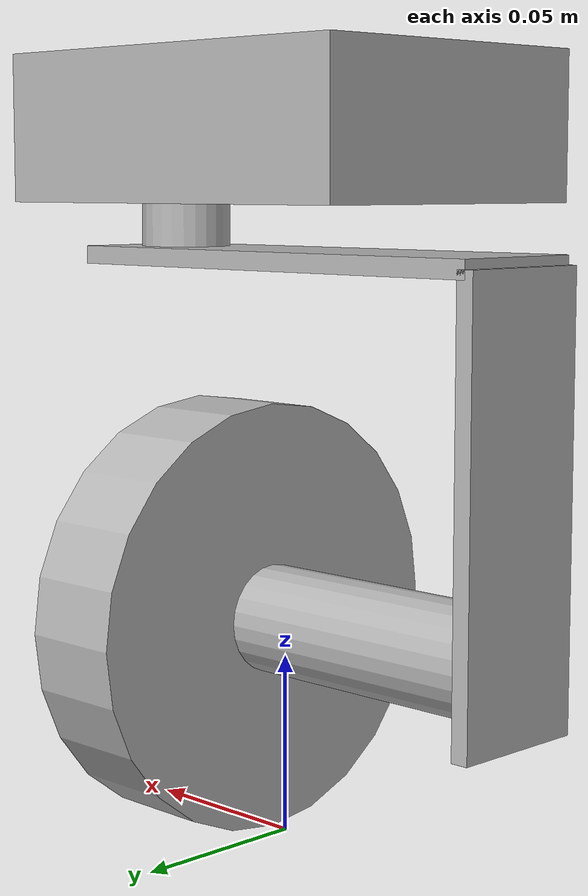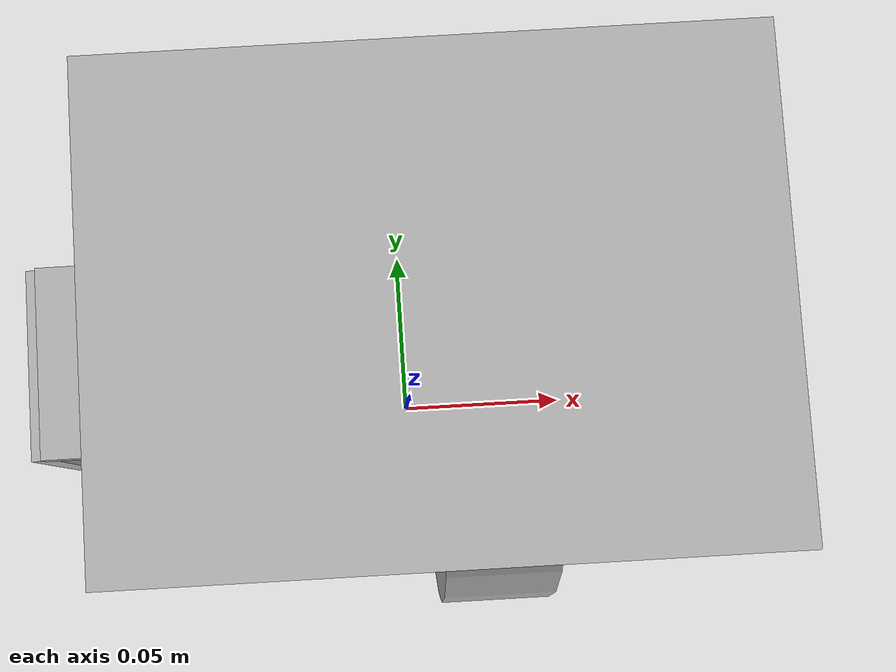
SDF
<?xml version='1.0'?>
<sdf version='1.4'>
  <model name="wheel_unit_60mm">

    <static>false</static>

    <!-- wheel base -->
    <link name='wheel_base'>
      <pose> 0 0 0.195 0 0 0</pose>
      <inertial>
        <pose> 0 0 0 0 0 0</pose>
        <mass>0.5</mass>
      </inertial>
      <collision name='wheel_base_collision'>
        <geometry>
          <box>
            <size>0.12 0.09 0.04</size>
          </box>
        </geometry>
      </collision>

      <visual name='wheel_base_visual'>
        <geometry>
          <box>
            <size>0.12 0.09 0.04</size>
          </box>
        </geometry>
      </visual>
    </link>

    <!-- Wheel mount -->
    <link name="wheel_mount">
      <inertial>
        <pose> 0 0 0 0 0 0</pose>
        <mass>0.5</mass>
      </inertial>
      <!-- Axle -->
      <pose>0.04 0.0 0.17 0 0 0</pose>
      <collision name="mount_axle_collision">
        <geometry>
          <cylinder>
            <radius>.0125</radius>
            <length>.02</length>
          </cylinder>
        </geometry>
      </collision>

      <visual name="mount_axle_visual">
        <geometry>
          <cylinder>
            <radius>.0125</radius>
            <length>.02</length>
          </cylinder>
        </geometry>
      </visual>

      <!-- Horizontal plate -->
      <collision name="hor_plate_collision">
        <pose>-0.05 0.0 -0.01 0 0 0</pose>
        <geometry>
          <box>
            <size>0.14 0.04 0.005</size>
          </box>
        </geometry>
      </collision>
      <visual name="hor_plate_visual">
        <pose>-0.05 0.0 -0.01 0 0 0</pose>
        <geometry>
          <box>
            <size>0.14 0.04 0.005</size>
          </box>
        </geometry>
      </visual>

      <!-- Vertical plate -->
      <collision name="ver_plate_collision">
        <pose>-0.12 0.0 -0.07 0 0 0</pose>
        <geometry>
          <box>
            <size>0.005 0.04 0.12</size>
          </box>
        </geometry>
      </collision>
      <visual name="ver_plate_visual">
        <pose>-0.12 0.0 -0.07 0 0 0</pose>
        <geometry>
          <box>
            <size>0.005 0.04 0.12</size>
          </box>
        </geometry>
      </visual>

      <!-- Axle -->

      <collision name="wheel_axle_collision">
        <pose>-0.07 0.0 -0.11 0 1.5707 0</pose>
        <geometry>
          <cylinder>
            <radius>.015</radius>
            <length>.10</length>
          </cylinder>
        </geometry>
      </collision>

      <visual name="wheel_axle_visual">
        <pose>-0.07 0.0 -0.11 0 1.5707 0</pose>
        <geometry>
          <cylinder>
            <radius>.015</radius>
            <length>.10</length>
          </cylinder>
        </geometry>
      </visual>

    </link>

    <!-- Wheel -->
    <link name="wheel">
      <pose>0.02 0.0 0.06 0 1.5707 0</pose>
      <inertial>
        <pose> 0 0 0 0 0 0</pose>
        <mass>0.5</mass>
      </inertial>

      <collision name="wheel_collision">
        <geometry>
          <cylinder>
            <radius>.06</radius>
            <length>.03</length>
          </cylinder>
        </geometry>

       <surface>
          <friction>
            <ode>
              <mu>0.85</mu>
              <mu2>0.85</mu2>
              <fdir1>1 1 0</fdir1>
              <slip1>0.0</slip1>
              <slip2>0.0</slip2>
            </ode>
          </friction>
        </surface>

      </collision>
      <visual name="wheel_visual">
        <geometry>
          <cylinder>
            <radius>.06</radius>
            <length>.03</length>
          </cylinder>
        </geometry>
      </visual>

    </link>

    <!-- link between base and wheel_mount -->
    <joint type="revolute" name="caster_joint">
      <pose>0 0 0 0 0 0</pose>
      <child>wheel_mount</child>
      <parent>base</parent>
      <axis>
        <xyz>0 0 1</xyz>
        <dynamics>
          <damping>10</damping>
          <friction>1</friction>
        </dynamics>
      </axis>
    </joint>

    <!-- link between wheel_mount and wheel -->
    <joint type="revolute" name="wheel_joint">
      <pose>0 0 0 0 0 0</pose>
      <child>wheel</child>
      <parent>wheel_mount</parent>
      <axis>
        <xyz>1 0 0</xyz>
        <dynamics>
          <damping>10</damping>
          <friction>1</friction>
        </dynamics>
      </axis>
    </joint>

    <plugin name="wheel_unit_controller" filename="libWheelUnitController.so">
      <caster>caster_joint</caster>
      <wheel>wheel_joint</wheel>
    </plugin>

  </model>
</sdf>
